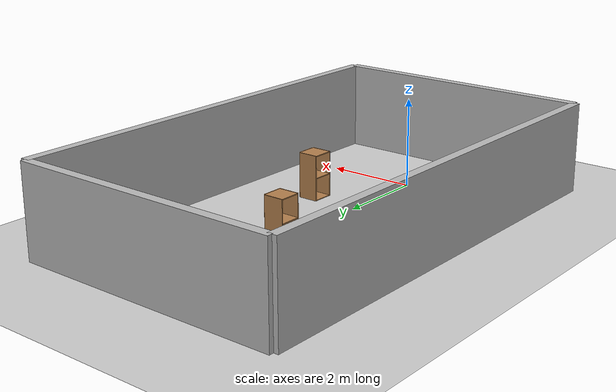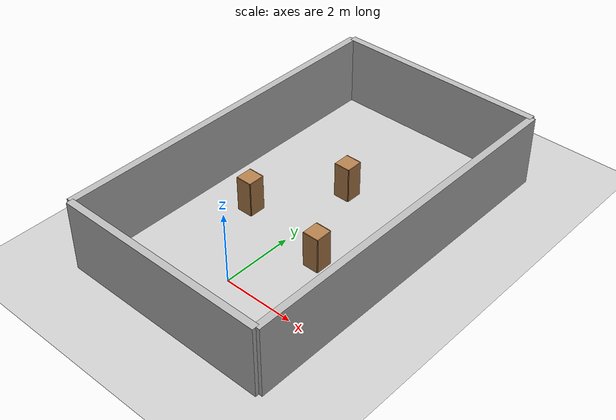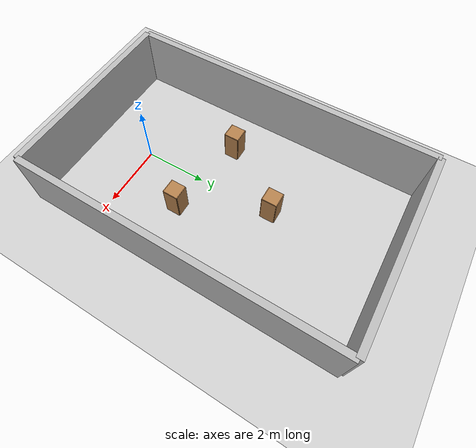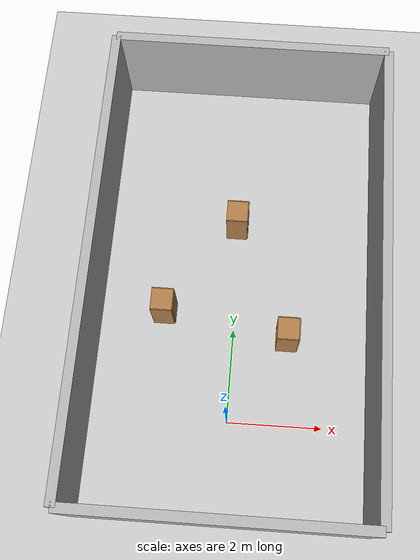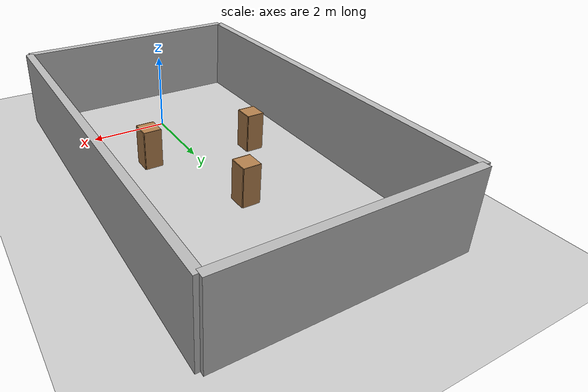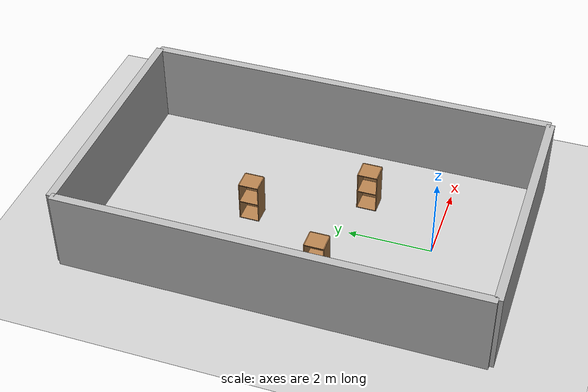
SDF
<sdf version="1.4">
 <world name="default">
  <physics type="ode">
   <gravity>0.000000 0.000000 -9.810000</gravity>
   <ode>
    <solver><type>quick</type><iters>20</iters><sor>1.000000</sor></solver>
    <constraints>
     <cfm>0.000000</cfm>
     <erp>0.200000</erp>
     <contact_max_correcting_vel>100.000000</contact_max_correcting_vel>
     <contact_surface_layer>0.000000</contact_surface_layer>
    </constraints>
   </ode>
   <real_time_update_rate>1000.000000</real_time_update_rate>
   <max_step_size>0.001000</max_step_size>
   <real_time_factor>1.000000</real_time_factor>
   <max_contacts>20</max_contacts>
  </physics>
  <light name="sun" type="directional">
   <pose>0.000000 0.000000 10.000000 0.000000 0.000000 0.000000</pose>
   <diffuse>0.800000 0.800000 0.800000 1.000000</diffuse>
   <specular>0.200000 0.200000 0.200000 1.000000</specular>
   <attenuation>
    <range>1000.000000</range>
    <constant>0.900000</constant>
    <linear>0.010000</linear>
    <quadratic>0.001000</quadratic>
   </attenuation>
   <direction>0.500000 0.100000 -0.900000</direction>
  </light>
  <model name="ground_plane">
   <static>1</static>
   <link name="link">
    <collision name="collision">
     <geometry>
      <plane><normal>0.000000 0.000000 1.000000</normal><size>100.000000 100.000000</size></plane>
     </geometry>
     <surface><friction><ode><mu>100.000000</mu><mu2>50.000000</mu2></ode></friction></surface>
    </collision>
    <visual name="visual">
     <cast_shadows>0</cast_shadows>
     <geometry>
      <plane><normal>0.000000 0.000000 1.000000</normal><size>100.000000 100.000000</size></plane>
     </geometry>
     <material>
      <script><uri>file://media/materials/scripts/gazebo.material</uri><name>Gazebo/Grey</name></script>
     </material>
    </visual>
    <velocity_decay><linear>0.000000</linear><angular>0.000000</angular></velocity_decay>
   </link>
  </model>
  <model name="wall_1_model">
   <pose>0.0 -2.0 1.0 0.0 0.0 0.0</pose>
   <static>1</static>
   <link name="wall_1_body">
    <inertial>
     <mass>1.000000</mass>
     <inertia>
      <ixx>1.000000</ixx>
      <ixy>0.000000</ixy>
      <ixz>0.000000</ixz>
      <iyy>1.000000</iyy>
      <iyz>0.000000</iyz>
      <izz>1.000000</izz>
     </inertia>
    </inertial>
    <collision name="collision">
     <geometry><box><size>6.000000 0.200000 2.000000</size></box></geometry>
    </collision>
    <visual name="visual"><geometry><box><size>6.000000 0.200000 2.000000</size></box></geometry></visual>
    <velocity_decay><linear>0.000000</linear><angular>0.000000</angular></velocity_decay>
   </link>
  </model>
  <model name="wall_2_model">
   <pose>0.0 8.0 1.0 0.0 0.0 0.0</pose>
   <static>1</static>
   <link name="wall_2_body">
    <inertial>
     <mass>1.000000</mass>
     <inertia>
      <ixx>1.000000</ixx>
      <ixy>0.000000</ixy>
      <ixz>0.000000</ixz>
      <iyy>1.000000</iyy>
      <iyz>0.000000</iyz>
      <izz>1.000000</izz>
     </inertia>
    </inertial>
    <collision name="collision">
     <geometry><box><size>6.000000 0.200000 2.000000</size></box></geometry>
    </collision>
    <visual name="visual"><geometry><box><size>6.000000 0.200000 2.000000</size></box></geometry></visual>
    <velocity_decay><linear>0.000000</linear><angular>0.000000</angular></velocity_decay>
   </link>
  </model>
  <model name="wall_3_model">
   <pose>-3.0 3.0 1.0 0.0 0.0 0.0</pose>
   <static>1</static>
   <link name="wall_3_body">
    <inertial>
     <mass>1.000000</mass>
     <inertia>
      <ixx>1.000000</ixx>
      <ixy>0.000000</ixy>
      <ixz>0.000000</ixz>
      <iyy>1.000000</iyy>
      <iyz>0.000000</iyz>
      <izz>1.000000</izz>
     </inertia>
    </inertial>
    <collision name="collision">
     <geometry><box><size>0.200000 10.000000 2.000000</size></box></geometry>
    </collision>
    <visual name="visual"><geometry><box><size>0.200000 10.000000 2.000000</size></box></geometry></visual>
    <velocity_decay><linear>0.000000</linear><angular>0.000000</angular></velocity_decay>
   </link>
  </model>
  <model name="wall_4_model">
   <pose>3.0 3.0 1.0 0.0 0.0 0.0</pose>
   <static>1</static>
   <link name="wall_4_body">
    <inertial>
     <mass>1.000000</mass>
     <inertia>
      <ixx>1.000000</ixx>
      <ixy>0.000000</ixy>
      <ixz>0.000000</ixz>
      <iyy>1.000000</iyy>
      <iyz>0.000000</iyz>
      <izz>1.000000</izz>
     </inertia>
    </inertial>
    <collision name="collision">
     <geometry><box><size>0.200000 10.000000 2.000000</size></box></geometry>
    </collision>
    <visual name="visual"><geometry><box><size>0.200000 10.000000 2.000000</size></box></geometry></visual>
    <velocity_decay><linear>0.000000</linear><angular>0.000000</angular></velocity_decay>
   </link>
  </model>
  <scene>
   <ambient>0.200000 0.200000 0.200000 1.000000</ambient>
   <background>0.700000 0.700000 0.700000 1.000000</background>
   <shadows>1</shadows>
  </scene>
  <model name="cabinet_1">
   <static>0</static>
   <link name="cabinet_bottom_plate">
    <inertial>
     <pose>0.000000 0.000000 -1.000000 0.000000 0.000000 0.000000</pose>
     <inertia>
      <ixx>2.050000</ixx>
      <ixy>0.000000</ixy>
      <ixz>0.000000</ixz>
      <iyy>2.050000</iyy>
      <iyz>0.000000</iyz>
      <izz>2.050000</izz>
     </inertia>
     <mass>25.000000</mass>
    </inertial>
    <collision name="cabinet_bottom_plate_geom">
     <pose>0.000000 0.000000 0.010000 0.000000 0.000000 0.000000</pose>
     <geometry><box><size>0.350000 0.350000 0.020000</size></box></geometry>
    </collision>
    <visual name="cabinet_bottom_plate_geom_visual">
     <pose>0.000000 0.000000 0.010000 0.000000 0.000000 0.000000</pose>
     <geometry><box><size>0.350000 0.350000 0.020000</size></box></geometry>
     <material>
      <script><uri>file://media/materials/scripts/gazebo.material</uri><name>Gazebo/Wood</name></script>
     </material>
    </visual>
    <collision name="cabinet_bottom_plate_geom_cabinet_back_plate">
     <pose>0.235000 0.000000 0.510000 0.000000 0.000000 0.000000</pose>
     <geometry><box><size>0.020000 0.450000 1.020000</size></box></geometry>
    </collision>
    <visual name="cabinet_bottom_plate_geom_cabinet_back_plate_visual">
     <pose>0.235000 0.000000 0.510000 0.000000 0.000000 0.000000</pose>
     <geometry><box><size>0.020000 0.450000 1.020000</size></box></geometry>
     <material>
      <script><uri>file://media/materials/scripts/gazebo.material</uri><name>Gazebo/Wood</name></script>
     </material>
    </visual>
    <collision name="cabinet_bottom_plate_geom_cabinet_left_plate">
     <pose>0.000000 0.235000 0.510000 0.000000 0.000000 0.000000</pose>
     <geometry><box><size>0.450000 0.020000 1.020000</size></box></geometry>
    </collision>
    <visual name="cabinet_bottom_plate_geom_cabinet_left_plate_visual">
     <pose>0.000000 0.235000 0.510000 0.000000 0.000000 0.000000</pose>
     <geometry><box><size>0.450000 0.020000 1.020000</size></box></geometry>
     <material>
      <script><uri>file://media/materials/scripts/gazebo.material</uri><name>Gazebo/Wood</name></script>
     </material>
    </visual>
    <collision name="cabinet_bottom_plate_geom_cabinet_middle_plate">
     <pose>0.000000 0.000000 0.510000 0.000000 0.000000 0.000000</pose>
     <geometry><box><size>0.450000 0.450000 0.020000</size></box></geometry>
    </collision>
    <visual name="cabinet_bottom_plate_geom_cabinet_middle_plate_visual">
     <pose>0.000000 0.000000 0.510000 0.000000 0.000000 0.000000</pose>
     <geometry><box><size>0.450000 0.450000 0.020000</size></box></geometry>
     <material>
      <script><uri>file://media/materials/scripts/gazebo.material</uri><name>Gazebo/Wood</name></script>
     </material>
    </visual>
    <collision name="cabinet_bottom_plate_geom_cabinet_right_plate">
     <pose>0.000000 -0.235000 0.510000 0.000000 0.000000 0.000000</pose>
     <geometry><box><size>0.450000 0.020000 1.020000</size></box></geometry>
    </collision>
    <visual name="cabinet_bottom_plate_geom_cabinet_right_plate_visual">
     <pose>0.000000 -0.235000 0.510000 0.000000 0.000000 0.000000</pose>
     <geometry><box><size>0.450000 0.020000 1.020000</size></box></geometry>
     <material>
      <script><uri>file://media/materials/scripts/gazebo.material</uri><name>Gazebo/Wood</name></script>
     </material>
    </visual>
    <collision name="cabinet_bottom_plate_geom_cabinet_top_plate">
     <pose>0.000000 0.000000 1.010000 0.000000 0.000000 0.000000</pose>
     <geometry><box><size>0.450000 0.450000 0.020000</size></box></geometry>
    </collision>
    <visual name="cabinet_bottom_plate_geom_cabinet_top_plate_visual">
     <pose>0.000000 0.000000 1.010000 0.000000 0.000000 0.000000</pose>
     <geometry><box><size>0.450000 0.450000 0.020000</size></box></geometry>
     <material>
      <script><uri>file://media/materials/scripts/gazebo.material</uri><name>Gazebo/Wood</name></script>
     </material>
    </visual>
    <velocity_decay><linear>0.000000</linear><angular>0.000000</angular></velocity_decay>
   </link>
   <pose>-1.51631609105 2.31102578879 0.0 0.0 0.0 0.0</pose>
  </model>
  <model name="cabinet_2">
   <static>0</static>
   <link name="cabinet_bottom_plate">
    <inertial>
     <pose>0.000000 0.000000 -1.000000 0.000000 0.000000 0.000000</pose>
     <inertia>
      <ixx>2.050000</ixx>
      <ixy>0.000000</ixy>
      <ixz>0.000000</ixz>
      <iyy>2.050000</iyy>
      <iyz>0.000000</iyz>
      <izz>2.050000</izz>
     </inertia>
     <mass>25.000000</mass>
    </inertial>
    <collision name="cabinet_bottom_plate_geom">
     <pose>0.000000 0.000000 0.010000 0.000000 0.000000 0.000000</pose>
     <geometry><box><size>0.450000 0.450000 0.020000</size></box></geometry>
    </collision>
    <visual name="cabinet_bottom_plate_geom_visual">
     <pose>0.000000 0.000000 0.010000 0.000000 0.000000 0.000000</pose>
     <geometry><box><size>0.450000 0.450000 0.020000</size></box></geometry>
     <material>
      <script><uri>file://media/materials/scripts/gazebo.material</uri><name>Gazebo/Wood</name></script>
     </material>
    </visual>
    <collision name="cabinet_bottom_plate_geom_cabinet_back_plate">
     <pose>0.235000 0.000000 0.510000 0.000000 0.000000 0.000000</pose>
     <geometry><box><size>0.020000 0.450000 1.020000</size></box></geometry>
    </collision>
    <visual name="cabinet_bottom_plate_geom_cabinet_back_plate_visual">
     <pose>0.235000 0.000000 0.510000 0.000000 0.000000 0.000000</pose>
     <geometry><box><size>0.020000 0.450000 1.020000</size></box></geometry>
     <material>
      <script><uri>file://media/materials/scripts/gazebo.material</uri><name>Gazebo/Wood</name></script>
     </material>
    </visual>
    <collision name="cabinet_bottom_plate_geom_cabinet_left_plate">
     <pose>0.000000 0.235000 0.510000 0.000000 0.000000 0.000000</pose>
     <geometry><box><size>0.450000 0.020000 1.020000</size></box></geometry>
    </collision>
    <visual name="cabinet_bottom_plate_geom_cabinet_left_plate_visual">
     <pose>0.000000 0.235000 0.510000 0.000000 0.000000 0.000000</pose>
     <geometry><box><size>0.450000 0.020000 1.020000</size></box></geometry>
     <material>
      <script><uri>file://media/materials/scripts/gazebo.material</uri><name>Gazebo/Wood</name></script>
     </material>
    </visual>
    <collision name="cabinet_bottom_plate_geom_cabinet_middle_plate">
     <pose>0.000000 0.000000 0.510000 0.000000 0.000000 0.000000</pose>
     <geometry><box><size>0.450000 0.450000 0.020000</size></box></geometry>
    </collision>
    <visual name="cabinet_bottom_plate_geom_cabinet_middle_plate_visual">
     <pose>0.000000 0.000000 0.510000 0.000000 0.000000 0.000000</pose>
     <geometry><box><size>0.450000 0.450000 0.020000</size></box></geometry>
     <material>
      <script><uri>file://media/materials/scripts/gazebo.material</uri><name>Gazebo/Wood</name></script>
     </material>
    </visual>
    <collision name="cabinet_bottom_plate_geom_cabinet_right_plate">
     <pose>0.000000 -0.235000 0.510000 0.000000 0.000000 0.000000</pose>
     <geometry><box><size>0.450000 0.020000 1.020000</size></box></geometry>
    </collision>
    <visual name="cabinet_bottom_plate_geom_cabinet_right_plate_visual">
     <pose>0.000000 -0.235000 0.510000 0.000000 0.000000 0.000000</pose>
     <geometry><box><size>0.450000 0.020000 1.020000</size></box></geometry>
     <material>
      <script><uri>file://media/materials/scripts/gazebo.material</uri><name>Gazebo/Wood</name></script>
     </material>
    </visual>
    <collision name="cabinet_bottom_plate_geom_cabinet_top_plate">
     <pose>0.000000 0.000000 1.010000 0.000000 0.000000 0.000000</pose>
     <geometry><box><size>0.450000 0.450000 0.020000</size></box></geometry>
    </collision>
    <visual name="cabinet_bottom_plate_geom_cabinet_top_plate_visual">
     <pose>0.000000 0.000000 1.010000 0.000000 0.000000 0.000000</pose>
     <geometry><box><size>0.450000 0.450000 0.020000</size></box></geometry>
     <material>
      <script><uri>file://media/materials/scripts/gazebo.material</uri><name>Gazebo/Wood</name></script>
     </material>
    </visual>
    <velocity_decay><linear>0.000000</linear><angular>0.000000</angular></velocity_decay>
   </link>
   <pose>1.15835432408 1.85994195353 0.0 0.0 0.0 0.0</pose>
  </model>
  <model name="cabinet_4">
   <static>0</static>
   <link name="cabinet_bottom_plate">
    <inertial>
     <pose>0.000000 0.000000 -1.000000 0.000000 0.000000 0.000000</pose>
     <inertia>
      <ixx>2.050000</ixx>
      <ixy>0.000000</ixy>
      <ixz>0.000000</ixz>
      <iyy>2.050000</iyy>
      <iyz>0.000000</iyz>
      <izz>2.050000</izz>
     </inertia>
     <mass>25.000000</mass>
    </inertial>
    <collision name="cabinet_bottom_plate_geom">
     <pose>0.000000 0.000000 0.010000 0.000000 0.000000 0.000000</pose>
     <geometry><box><size>0.450000 0.450000 0.020000</size></box></geometry>
    </collision>
    <visual name="cabinet_bottom_plate_geom_visual">
     <pose>0.000000 0.000000 0.010000 0.000000 0.000000 0.000000</pose>
     <geometry><box><size>0.450000 0.450000 0.020000</size></box></geometry>
     <material>
      <script><uri>file://media/materials/scripts/gazebo.material</uri><name>Gazebo/Wood</name></script>
     </material>
    </visual>
    <collision name="cabinet_bottom_plate_geom_cabinet_back_plate">
     <pose>0.235000 0.000000 0.510000 0.000000 0.000000 0.000000</pose>
     <geometry><box><size>0.020000 0.450000 1.020000</size></box></geometry>
    </collision>
    <visual name="cabinet_bottom_plate_geom_cabinet_back_plate_visual">
     <pose>0.235000 0.000000 0.510000 0.000000 0.000000 0.000000</pose>
     <geometry><box><size>0.020000 0.450000 1.020000</size></box></geometry>
     <material>
      <script><uri>file://media/materials/scripts/gazebo.material</uri><name>Gazebo/Wood</name></script>
     </material>
    </visual>
    <collision name="cabinet_bottom_plate_geom_cabinet_left_plate">
     <pose>0.000000 0.235000 0.510000 0.000000 0.000000 0.000000</pose>
     <geometry><box><size>0.450000 0.020000 1.020000</size></box></geometry>
    </collision>
    <visual name="cabinet_bottom_plate_geom_cabinet_left_plate_visual">
     <pose>0.000000 0.235000 0.510000 0.000000 0.000000 0.000000</pose>
     <geometry><box><size>0.450000 0.020000 1.020000</size></box></geometry>
     <material>
      <script><uri>file://media/materials/scripts/gazebo.material</uri><name>Gazebo/Wood</name></script>
     </material>
    </visual>
    <collision name="cabinet_bottom_plate_geom_cabinet_middle_plate">
     <pose>0.000000 0.000000 0.510000 0.000000 0.000000 0.000000</pose>
     <geometry><box><size>0.450000 0.450000 0.020000</size></box></geometry>
    </collision>
    <visual name="cabinet_bottom_plate_geom_cabinet_middle_plate_visual">
     <pose>0.000000 0.000000 0.510000 0.000000 0.000000 0.000000</pose>
     <geometry><box><size>0.450000 0.450000 0.020000</size></box></geometry>
     <material>
      <script><uri>file://media/materials/scripts/gazebo.material</uri><name>Gazebo/Wood</name></script>
     </material>
    </visual>
    <collision name="cabinet_bottom_plate_geom_cabinet_right_plate">
     <pose>0.000000 -0.235000 0.510000 0.000000 0.000000 0.000000</pose>
     <geometry><box><size>0.450000 0.020000 1.020000</size></box></geometry>
    </collision>
    <visual name="cabinet_bottom_plate_geom_cabinet_right_plate_visual">
     <pose>0.000000 -0.235000 0.510000 0.000000 0.000000 0.000000</pose>
     <geometry><box><size>0.450000 0.020000 1.020000</size></box></geometry>
     <material>
      <script><uri>file://media/materials/scripts/gazebo.material</uri><name>Gazebo/Wood</name></script>
     </material>
    </visual>
    <collision name="cabinet_bottom_plate_geom_cabinet_top_plate">
     <pose>0.000000 0.000000 1.010000 0.000000 0.000000 0.000000</pose>
     <geometry><box><size>0.450000 0.450000 0.020000</size></box></geometry>
    </collision>
    <visual name="cabinet_bottom_plate_geom_cabinet_top_plate_visual">
     <pose>0.000000 0.000000 1.010000 0.000000 0.000000 0.000000</pose>
     <geometry><box><size>0.450000 0.450000 0.020000</size></box></geometry>
     <material>
      <script><uri>file://media/materials/scripts/gazebo.material</uri><name>Gazebo/Wood</name></script>
     </material>
    </visual>
    <velocity_decay><linear>0.000000</linear><angular>0.000000</angular></velocity_decay>
   </link>
   <pose>-0.075136521986 4.4055191646 0.0 0.0 0.0 0.0</pose>
  </model>
 </world>
</sdf>
